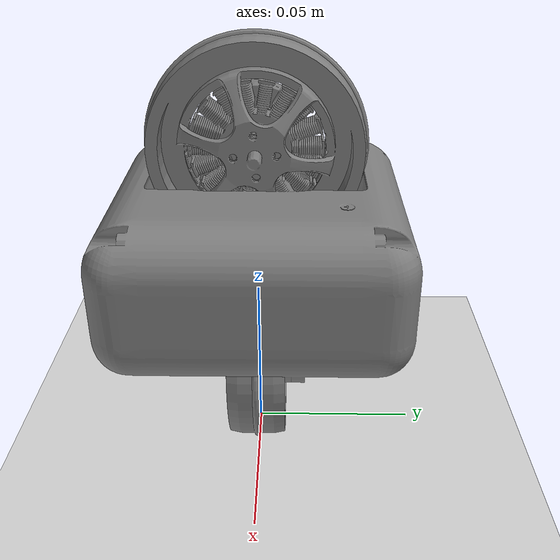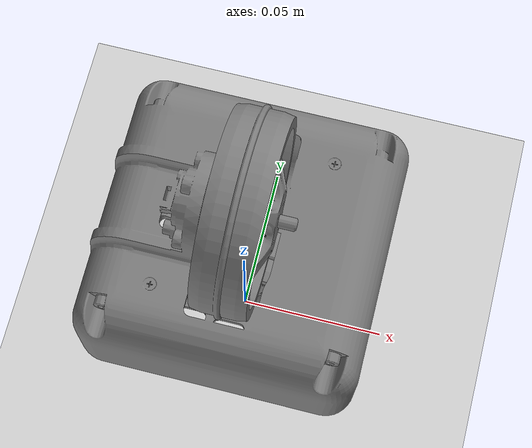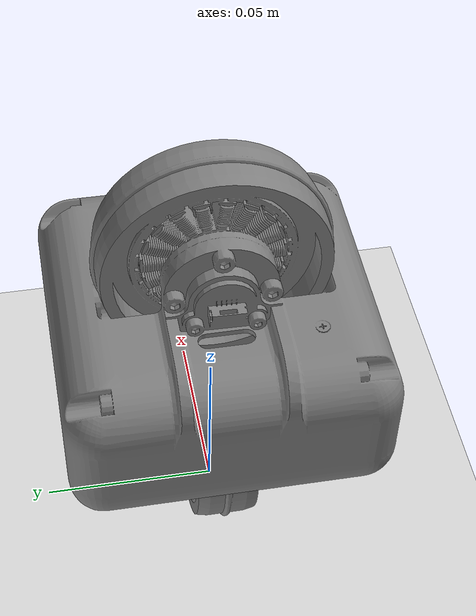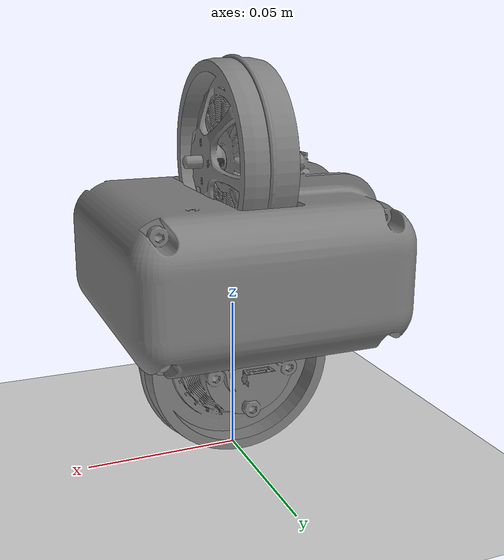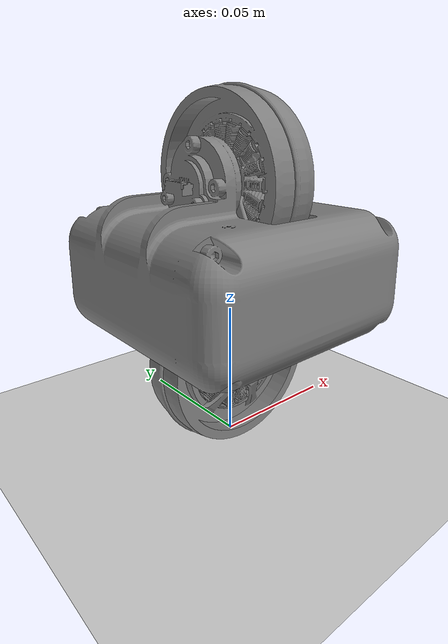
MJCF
<mujoco>
  <visual>
    <global offwidth="640" offheight="640"/>
  </visual>
  <option gravity="0 0 -9.81"/>
  <asset>
		<mesh name="body" file="mesh/mujoco_simplified_body.stl"/>
    <mesh name="wheel" file="mesh/actuator_rotor_simplified.stl"/>
    <texture name="checker" type="2d" builtin="checker" width="8" height="8" rgb1="1 1 1" rgb2="0.7 0.7 0.7"/>
    <material name="checker_mat" texture="checker" texrepeat="64 64" reflectance="0.2"/>
	</asset>
  <worldbody>
    <body name="track" pos="0 0 0">
    </body>
    <geom name="ground" type="plane" size="8 8 0.1" material="checker_mat"/>
    <body name ="body" pos="0 0 .0645" euler="0 0 0">
      <inertial pos="0 0 0" mass="0.56939" diaginertia="6.439e-4 1.368e-3 1.012e-3"/>
      <site name = "imu_1" pos = "-0.0234 -0.0204 0.01939" euler="180 0 90" type="box" size="0.0045 0.003 0.00095"/>
      <site name = "imu_2" pos = "0.0234 0.0204 0.01939" euler="180 0 90" type="box" size="0.0045 0.003 0.00095"/>
      <site name = "imu_3" pos = "-0.016427 0.020172 -0.01889" euler="0 0 90" type="box" size="0.0045 0.003 0.00095"/>
      <site name = "imu_4" pos = "0.016368 -0.020481 -0.018916" euler="0 0 90" type="box" size="0.0045 0.003 0.00095"/>
      <joint type="free"/>
      <geom name="body_geom" type="mesh" mesh="body"/>
      <body name ="wheel1" pos="0 0 -0.0325" euler="0 0 -90">
        <inertial pos="0 0 0" mass="0.11002" diaginertia="8.852e-5 4.503e-5 4.503e-5"/>
        <joint name="w1" type="hinge" pos="0 0 0" axis="-1 0 0" damping="1.377e-4" frictionloss="8.061e-4"/>
        <geom name="wheel_1_geom" type="mesh" mesh="wheel"/>
      </body>
      <body name ="wheel2" pos="0 0 0.0325" euler="0 0 0">
        <inertial pos="0 0 0" mass="0.11002" diaginertia="8.852e-5 4.503e-5 4.503e-5"/>
        <joint name="w2" type="hinge" pos="0 0 0" axis="1 0 0" damping="1.075e-4" frictionloss="1.198e-5"/>
        <geom name="wheel_2_geom" type="mesh" mesh="wheel"/>
      </body>
      <light diffuse=".9 .9 .9" pos="0 0 5" dir="0 0 -1"/>
      <camera name="floating" pos="-0.5 0 0.5" euler="0 -60 270" mode="track"/>
      <camera name="fixed" pos="-0.5 0 0.4" euler="0 -60 270" mode="fixed"/>
    </body>

    <!-- Wall 1: North -->
    <!-- Wall 2: South -->
    <!-- Wall 3: East -->
    <!-- Wall 4: West -->
  </worldbody>
  <actuator>
    <motor name="motor_1" joint="w1" gear="1" ctrlrange="-0.5 0.5"/>
    <motor name="motor_2" joint="w2" gear="1" ctrlrange="-0.5 0.5"/>
  </actuator>
  <sensor>
    <accelerometer name="acc_1" site="imu_1"/>
    <accelerometer name="acc_2" site="imu_2"/>
    <accelerometer name="acc_3" site="imu_3"/>
    <accelerometer name="acc_4" site="imu_4"/>

    <gyro name="gyr_1" site="imu_1"/>
    <gyro name="gyr_2" site="imu_2"/>
    <gyro name="gyr_3" site="imu_3"/>
    <gyro name="gyr_4" site="imu_4"/>

    <actuatorpos name="motor_1_pos" actuator="motor_1"/>
    <actuatorpos name="motor_2_pos" actuator="motor_2"/>
  </sensor>
  <contact>
    <exclude body1="wheel1" body2="wheel2"/>
    <exclude body1="wheel1" body2="body"/>
    <exclude body1="wheel2" body2="body"/>

    <pair geom1="wheel_1_geom" geom2="ground" condim="6" friction="3.4515 3.4515 7.145e-4 2.147e-3 2.147e-3" solimp="0.9 0.95 0.001 0.5 2" solref="0.02 1"/>
  </contact>
</mujoco>
